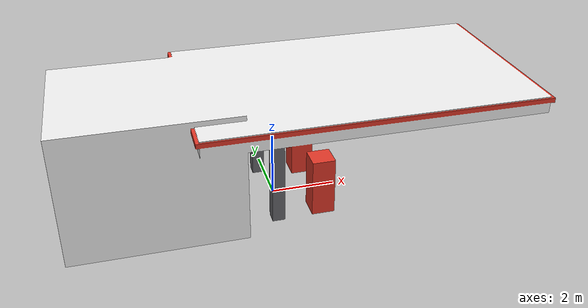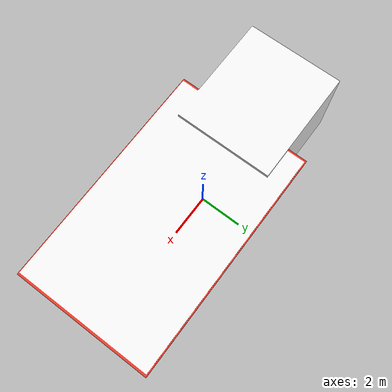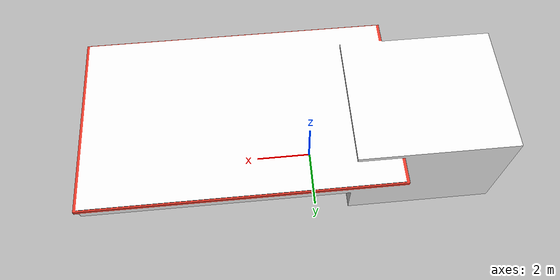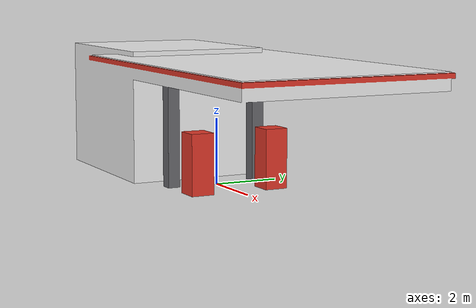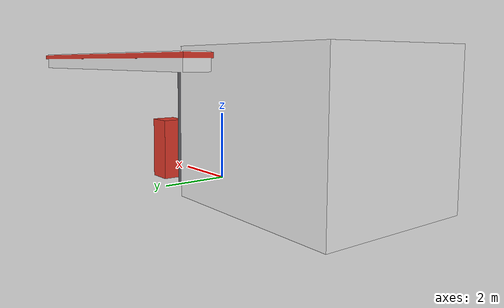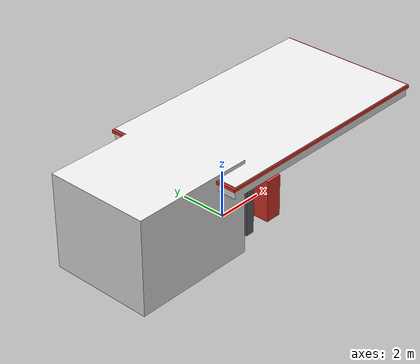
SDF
<?xml version="1.0"?>
<sdf version="1.3">
  <model name="Gas Station">
    <static>true</static>
    <link name="link">
      <pose>0 0 0 0 0 0</pose>
      <collision name="collision">
        <geometry>
          <mesh>
            <uri>file:///home/dalitso/src/senior_design/Autonomous-Vehicle-End-to-End-Control-Project/install/gazebo_project/share/gazebo_project/model/gas_station/meshes/gas_station.dae</uri>
          </mesh>
        </geometry>
      </collision>
      <visual name="visual">
        <geometry>
          <mesh>
            <uri>file:///home/dalitso/src/senior_design/Autonomous-Vehicle-End-to-End-Control-Project/install/gazebo_project/share/gazebo_project/model/gas_station/meshes/gas_station.dae</uri>
          </mesh>
        </geometry>
        <material>
          <script>
            <uri>file:///home/dalitso/src/senior_design/Autonomous-Vehicle-End-to-End-Control-Project/install/gazebo_project/share/gazebo_project/model/gas_station/materials/scripts</uri>
            <uri>file:///home/dalitso/src/senior_design/Autonomous-Vehicle-End-to-End-Control-Project/install/gazebo_project/share/gazebo_project/model/gas_station/materials/textures</uri>
            <name>GasStation/Diffuse</name>
          </script>
          <shader type="normal_map_object_space">
            <normal_map>GasStation_Normal.png</normal_map>
          </shader>
        </material>
      </visual>
    </link>
  </model>
</sdf>
